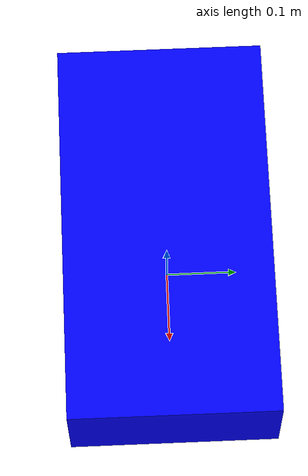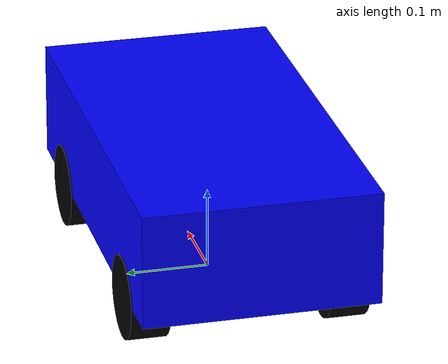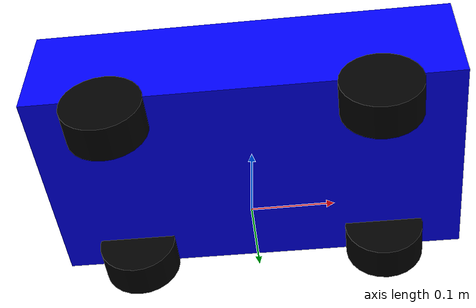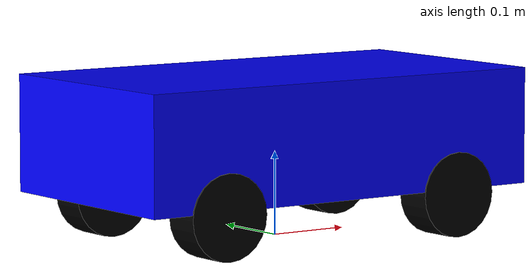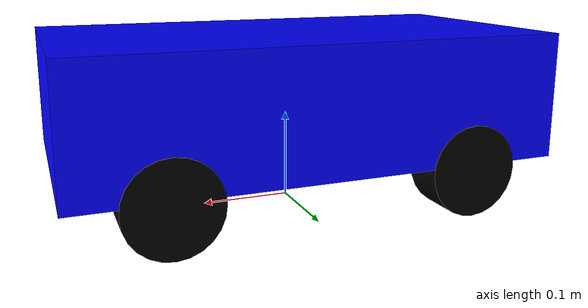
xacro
<?xml version="1.0"?>
<robot name="car" xmlns:xacro="http://ros.org/wiki/xacro">
  <!-- Axes are X (forward), Y (left), and Z (up).  This complies with the
       right-hand rule.  Lengths are measured in meters and masses in
       kilograms. -->

  <xacro:include filename="$(find aav_simple_description)/urdf/props.urdf.xacro"/>
  <xacro:include filename="$(find aav_simple_description)/urdf/wheel.urdf.xacro"/>

  <gazebo>
    <plugin name="pwm_steer" filename="libpwm_steer.so"/>
  </gazebo>

  <link name="base_link">
    <collision>
      <origin xyz="0 0 ${ground_clearance + chassis_height / 2}"/>
      <geometry>
        <box size="${chassis_length} ${chassis_width} ${chassis_height}"/>
      </geometry>
    </collision>

    <visual>
      <origin xyz="0 0 ${ground_clearance + chassis_height / 2}"/>
      <geometry>
        <box size="${chassis_length} ${chassis_width} ${chassis_height}"/>
      </geometry>
      <material name="blue">
        <color rgba="0 0 1 1"/>
      </material>
    </visual>

    <inertial>
      <origin xyz="0 0 ${ground_clearance + chassis_height / 2}"/>
      <mass value="2.26796"/>
      <inertia ixx=".0065806093" ixy="0" ixz="0"
        iyy=".0154882693" iyz="0" izz=".0220224112"/>
    </inertial>
  </link>

  <gazebo reference="base_link">
    <material>Gazebo/Blue</material>
    <turnGravityOff>false</turnGravityOff>
  </gazebo>

  <xacro:front_wheel name="left" x="-1"/>
  <xacro:front_wheel name="right" x="1"/>
  <xacro:back_wheel name="left" x="-1"/>
  <xacro:back_wheel name="right" x="1"/>
</robot>

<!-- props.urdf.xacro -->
<robot name="props" xmlns:xacro="http://ros.org/wiki/xacro">
  <!-- The dimensions of the car body itself. -->
  <xacro:property name="chassis_length" value=".5334"/>
  <xacro:property name="chassis_width" value=".28575"/>
  <xacro:property name="chassis_height" value=".1397"/>

  <!-- The distance between the ground to the bottom of the chassis. -->
  <xacro:property name="ground_clearance" value=".05715"/>

  <xacro:property name="chassis_offset" value=".0254"/>

  <!-- The center-to-center distance between the front wheels.  (It is assumed
       that this is the same as the distance between the back wheels.) -->
  <xacro:property name="wheelbase_width" value=".2413"/>

  <!-- The distance between the front and back axes. -->
  <xacro:property name="wheelbase_length" value=".3302"/>

  <!-- The distance from the center of a wheel to the outside of its tire. -->
  <xacro:property name="tire_radius" value=".0508"/>

  <!-- The distance from the inside to the outside of a tire.  Basically, the
       width of the tread. -->
  <xacro:property name="tire_width" value=".047625"/>
</robot>

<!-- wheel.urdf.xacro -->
<robot name="wheel" xmlns:xacro="http://ros.org/wiki/xacro">
  <xacro:macro name="front_wheel" params="name x">
    <link name="front_${name}_wheel">
      <collision>
        <origin xyz="0 0 0" rpy="0 1.5707 1.5707"/>
        <geometry>
          <cylinder radius="${tire_radius}" length="${tire_width}"/>
        </geometry>
      </collision>

      <visual>
        <origin xyz="0 0 0" rpy="0 1.5707 1.5707"/>
        <geometry>
          <cylinder radius="${tire_radius}" length="${tire_width}"/>
        </geometry>
        <material name="black">
          <color rgba="0 0 0 1"/>
        </material>
      </visual>

      <inertial>
        <origin xyz="0 0 0" rpy="0 1.5707 1.5707"/>
        <mass value=".5"/>
        <inertia ixx=".02467" ixy="0" ixz="0" iyy=".02467" iyz="0" izz=".04411"/>
      </inertial>
    </link>

    <gazebo reference="front_${name}_wheel">
      <material>Gazebo/Black</material>
      <turnGravityOff>false</turnGravityOff>
      <mu1 value="1"/>
      <mu2 value="1"/>
      <kp value="10000000"/>
      <kd value="1"/>
      <fdir1 value="1 0 0"/>
    </gazebo>

    <link name="front_${name}_link">
      <inertial>
        <origin xyz="0 0 0"/>
        <mass value=".6"/>
        <inertia ixx=".001" ixy="0" ixz="0" iyy=".001" iyz="0" izz=".001"/>
      </inertial>
    </link>

    <joint name="front_${name}_turn_joint" type="revolute">
      <parent link="base_link"/>
      <child link="front_${name}_link"/>
      <origin xyz="${wheelbase_length / 2}
        ${x * wheelbase_width / 2}
        ${tire_radius}"/>
      <axis xyz="0 0 1"/>
      <limit effort="1000" lower="-.548" upper=".548" velocity=".5"/>
    </joint>

    <joint name="front_${name}_joint" type="continuous">
      <parent link="front_${name}_link"/>
      <child link="front_${name}_wheel"/>
      <origin xyz="0 0 0"/>
      <axis xyz="0 1 0"/>
    </joint>
  </xacro:macro>

  <xacro:macro name="back_wheel" params="name x">
    <link name="back_${name}_wheel">
      <collision>
        <origin xyz="0 0 0" rpy="0 1.5707 1.5707"/>
        <geometry>
          <cylinder radius="${tire_radius}" length="${tire_width}"/>
        </geometry>
      </collision>

      <visual>
        <origin xyz="0 0 0" rpy="0 1.5707 1.5707"/>
        <geometry>
          <cylinder radius="${tire_radius}" length="${tire_width}"/>
        </geometry>
        <material name="black">
          <color rgba="0 0 0 1"/>
        </material>
      </visual>

      <inertial>
        <origin xyz="0 0 0" rpy="0 1.5707 1.5707"/>
        <mass value=".5"/>
        <inertia ixx=".02467" ixy="0" ixz="0" iyy=".02467" iyz="0" izz=".04411"/>
      </inertial>
    </link>

    <gazebo reference="back_${name}_wheel">
      <material>Gazebo/Black</material>
      <turnGravityOff>false</turnGravityOff>
      <mu1 value="1.5"/>
      <mu2 value="1.5"/>
      <kp value="1000000"/>
      <kd value="100"/>
      <fdir1 value="1 0 0"/>
    </gazebo>

    <joint name="back_${name}_joint" type="continuous">
      <parent link="base_link"/>
      <child link="back_${name}_wheel"/>
      <axis xyz="0 1 0"/>
      <origin xyz="${-wheelbase_length / 2}
        ${x * wheelbase_width / 2}
        ${tire_radius}"/>
    </joint>
  </xacro:macro>
</robot>
